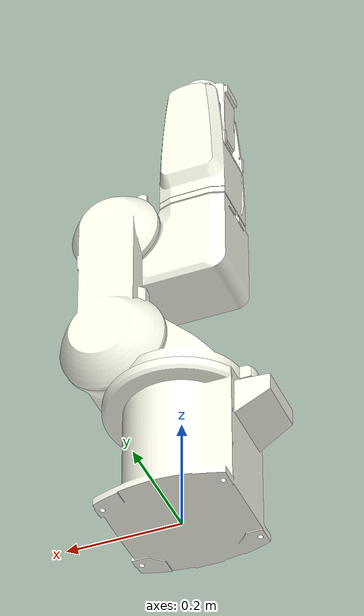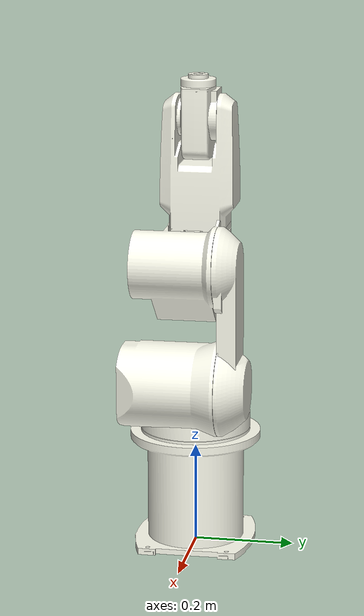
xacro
<?xml version="1.0"?>
<robot xmlns:xacro="http://www.ros.org/wiki/xacro" name="rv_3s">
    <xacro:arg name="initial_positions_file" default="initial_positions.yaml" />

    <!-- Import rv_3s urdf file -->
    <xacro:include filename="$(find mitsubishi_robot_description)/urdf/rv_3s/rv_3s.xacro" />

    <!-- Import control_xacro -->
    <xacro:include filename="rv_3s.ros2_control.xacro" />

    <xacro:rv_3s_ros2_control name="FakeSystem" initial_positions_file="$(arg initial_positions_file)"/>

</robot>

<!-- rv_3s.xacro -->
<robot name="rv_6sdl_s15" xmlns:xacro="http://ros.org/wiki/xacro">
  <!-- Arguments -->
  <xacro:arg name="control_name" default="MitsubishiRobot/RobotSystem" />
  <xacro:arg name="robot_ip" default="192.168.0.1" />
  <xacro:arg name="robot_port" default="10000" />
  <xacro:arg name="control_port" default="10003" />
  <xacro:arg name="robot_password" default="ARMALABS" />
  <xacro:arg name="simulation" default="true" />

  <!-- Includes -->
  <xacro:include filename="rv_3s.ros2_control.xacro" />
  <xacro:include filename="rv_3s.urdf.xacro" />
</robot>

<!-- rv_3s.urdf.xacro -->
<robot name="rv_3s_urdf" xmlns:xacro="http://ros.org/wiki/xacro">
  <!-- Constants -->
  <xacro:property name="PI" value="3.1415926535897931" />
  <xacro:property name="mass" value="0.1" />
  <xacro:property name="offset_from_limit" value="5.0" />
  <xacro:property name="joint_velocity" value="5.0" />
  <xacro:property name="default_scale" value="0.001 0.001 0.001" />
  <xacro:property name="damping" value="10.0" />
  <xacro:property name="package_name" value="mitsubishi_robot_description" />

  <!-- Colors -->
  <material name="ivory">
    <color rgba="1.0 1.0 ${240/255} 1.0" />
  </material>

  <!-- Link Definitions -->
  <link name="world"/>

  <link name="base_link">
    <visual>
      <geometry>
        <mesh filename="package://${package_name}/meshes/rv_3s/visual/base.stl" scale="${default_scale}" />
      </geometry>
      <origin xyz="0 0 0" rpy="0 0 0"/>
      <material name="ivory"/>
    </visual>
    <collision>
      <geometry>
        <mesh filename="package://${package_name}/meshes/rv_3s/collision/base.stl" scale="${default_scale}" />
      </geometry>
      <origin xyz="0 0 0" rpy="0 0 0"/>
    </collision>
    <inertial>
      <mass value="${mass}" />
      <inertia
        ixx="1.0" ixy="0.0" ixz="0.0"
        iyy="1.0" iyz="0.0"
        izz="1.0" />
    </inertial>
  </link>

  <joint name="base_joint" type="fixed">
    <parent link="world" />
    <child link="base_link" />
    <origin xyz="0 0 0" rpy="0 0 0" />
  </joint>

  <link name="shoulder_link">
    <visual>
      <geometry>
        <mesh filename="package://${package_name}/meshes/rv_3s/visual/shoulder.stl" scale="${default_scale}" />
      </geometry>
      <origin xyz="0 0 0" rpy="0 0 0"/>
      <material name="ivory"/>
    </visual>
    <collision>
      <geometry>
        <mesh filename="package://${package_name}/meshes/rv_3s/collision/shoulder.stl" scale="${default_scale}" />
      </geometry>
      <origin xyz="0 0 0" rpy="0 0 0"/>
    </collision>
    <inertial>
      <mass value="${mass}" />
      <inertia
        ixx="1.0" ixy="0.0" ixz="0.0"
        iyy="1.0" iyz="0.0"
        izz="1.0" />
    </inertial>
  </link>

  <joint name="base_to_shoulder_joint" type="revolute">
    <parent link="base_link" />
    <child link="shoulder_link" />
    <axis xyz="0 0 1" />
    <origin xyz="0 0 0.255" rpy="0 0 0" />
    <dynamics damping="${damping}" friction="0.1" />
    <limit effort="1000.0" lower="${(-170+offset_from_limit)*PI/180}" upper="${(170-offset_from_limit)*PI/180}"
      velocity="${joint_velocity}" />
  </joint>

  <link name="arm_1_link">
    <visual>
      <geometry>
        <mesh filename="package://${package_name}/meshes/rv_3s/visual/arm1.stl" scale="${default_scale}" />
      </geometry>
      <origin xyz="0 0 0" rpy="0 0 0"/>

      <material name="ivory"/>
    </visual>
    <collision>
      <geometry>
        <mesh filename="package://${package_name}/meshes/rv_3s/collision/arm1.stl" scale="${default_scale}" />
      </geometry>
      <origin xyz="0 0 0" rpy="0 0 0"/>
    </collision>
    <inertial>
      <mass value="${mass}" />
      <inertia
        ixx="1.0" ixy="0.0" ixz="0.0"
        iyy="1.0" iyz="0.0"
        izz="1.0" />
    </inertial>
  </link>

  <joint name="shoulder_to_arm_1_joint" type="revolute">
    <parent link="shoulder_link" />
    <child link="arm_1_link" />
    <axis xyz="0 0 1" />
    <origin xyz="0.095 0.108 0.095" rpy="0 -${PI/2} -${PI/2}"/>
    <limit effort="1000.0" lower="${(-90+offset_from_limit)*PI/180}"
      upper="${(135-offset_from_limit)*PI/180}" velocity="${joint_velocity}" />
    <dynamics damping="${damping}" friction="0.1" />
  </joint>

  <link name="elbow_link">
    <visual>
      <geometry>
        <mesh filename="package://${package_name}/meshes/rv_3s/visual/elbow.stl" scale="${default_scale}" />
      </geometry>
      <origin xyz="0 0 0" rpy="0 0 0"/>
      <material name="ivory"/>
    </visual>
    <collision>
      <geometry>
        <mesh filename="package://${package_name}/meshes/rv_3s/collision/elbow.stl" scale="${default_scale}" />
      </geometry>
      <origin xyz="0 0 0" rpy="0 0 0"/>
    </collision>
    <inertial>
      <mass value="${mass}" />
      <inertia
        ixx="1.0" ixy="0.0" ixz="0.0"
        iyy="1.0" iyz="0.0"
        izz="1.0" />
    </inertial>
  </link>

  <joint name="arm_1_to_elbow_joint" type="revolute">
    <parent link="arm_1_link" />
    <child link="elbow_link" />
    <origin xyz="0.245 0 -0.044" rpy="0 0 -${PI/2}" /> <!-- arm 1 should be -90 deg about z axis for straight up 0-position -->
    <axis xyz="0 0 1" />
    <dynamics damping="${damping}" friction="0.1" />
    <limit effort="1000.0" lower="${(-20+offset_from_limit)*PI/180}"
      upper="${(171-offset_from_limit)*PI/180}" velocity="${joint_velocity}" />
  </joint>

  <link name="arm_2_link">
    <visual>
      <geometry>
        <mesh filename="package://${package_name}/meshes/rv_3s/visual/arm2.stl" scale="${default_scale}" />
      </geometry>
      <origin xyz="0 0 0" rpy="0 0 0"/>
      <material name="ivory"/>
    </visual>
    <collision>
      <geometry>
        <mesh filename="package://${package_name}/meshes/rv_3s/collision/arm2.stl" scale="${default_scale}" />
      </geometry>
      <origin xyz="0 0 0" rpy="0 0 0"/>
    </collision>
    <inertial>
      <mass value="${mass}" />
      <inertia
        ixx="1.0" ixy="0.0" ixz="0.0"
        iyy="1.0" iyz="0.0"
        izz="1.0" />
    </inertial>
  </link>

  <joint name="elbow_to_arm_2_joint" type="revolute" >
    <parent link="elbow_link" />
    <child link="arm_2_link" />
    <origin xyz="0.135 0.055 -0.064" rpy="${PI/2} 0 ${PI}" />
    <axis xyz="0 0 1" />
    <dynamics damping="${damping}" friction="0.1" />
    <limit effort="1000.0" lower="${(-160+offset_from_limit)*PI/180}"
      upper="${(160-offset_from_limit)*PI/180}" velocity="${joint_velocity}" />
  </joint>

  <link name="wrist_link">
    <visual>
      <geometry>
        <mesh filename="package://${package_name}/meshes/rv_3s/visual/wrist.stl" scale="${default_scale}" />
      </geometry>
      <origin xyz="0 0 0" rpy="0 0 0"/>
      <material name="ivory"/>
    </visual>
    <collision>
      <geometry>
        <mesh filename="package://${package_name}/meshes/rv_3s/collision/wrist.stl" scale="${default_scale}" />
      </geometry>
      <origin xyz="0 0 0" rpy="0 0 0"/>
    </collision>
    <inertial>
      <mass value="${mass}" />
      <inertia
        ixx="1.0" ixy="0.0" ixz="0.0"
        iyy="1.0" iyz="0.0"
        izz="1.0" />
    </inertial>
  </link>

  <joint name="arm_2_to_wrist_joint" type="revolute">
    <parent link="arm_2_link" />
    <child link="wrist_link" />
    <axis xyz="0 0 1" />
    <origin xyz="0 0.037 0.215" rpy="0 -${PI/2} -${PI/2}" />
    <dynamics damping="${damping}" friction="0.1" />
    <limit effort="1000.0" lower="${(-120+offset_from_limit)*PI/180}"
      upper="${(120-offset_from_limit)*PI/180}" velocity="${joint_velocity}" />
  </joint>

  <link name="end_effector">
    <visual>
      <geometry>
        <mesh filename="package://${package_name}/meshes/rv_3s/visual/end_effector.stl" scale="${default_scale}" />
      </geometry>
      <origin xyz="0 0 0" rpy="0 0 0" />
      <material name="ivory"/>
    </visual>
    <collision>
      <geometry>
        <mesh filename="package://${package_name}/meshes/rv_3s/collision/end_effector.stl" scale="${default_scale}" />
      </geometry>
      <origin xyz="0 0 0" rpy="0 0 0" />
    </collision>
    <inertial>
      <mass value="${mass}" />
      <inertia
        ixx="1.0" ixy="0.0" ixz="0.0"
        iyy="1.0" iyz="0.0"
        izz="1.0" />
    </inertial>
  </link>

  <joint name="wrist_to_end_effector_joint" type="revolute">
    <parent link="wrist_link" />
    <child link="end_effector" />
    <axis xyz="0 0 1" />
    <origin xyz="0.085 0 -0.037" rpy="${PI/2} 0 ${PI/2}" />
    <dynamics damping="${damping}" friction="0.1" />
    <limit effort="1000.0" lower="${(-360+offset_from_limit)*PI/180}"
      upper="${(360-offset_from_limit)*PI/180}" velocity="${joint_velocity}" />
  </joint>
</robot>
